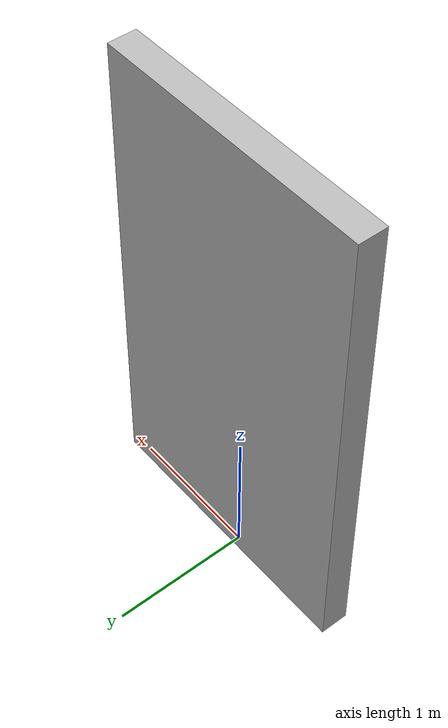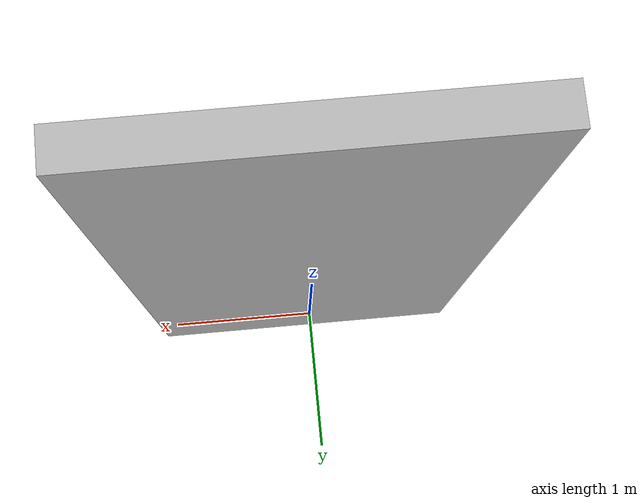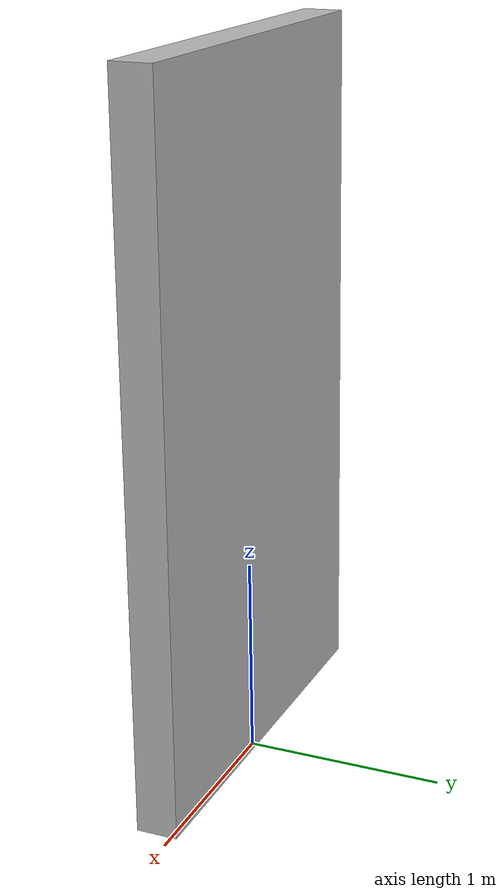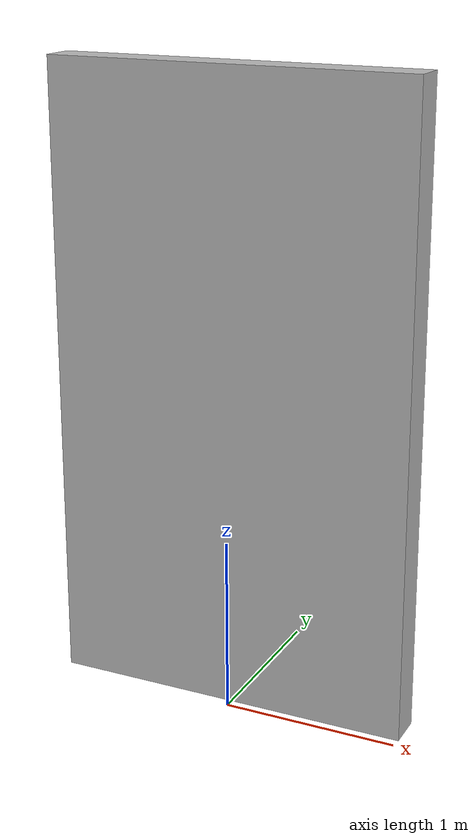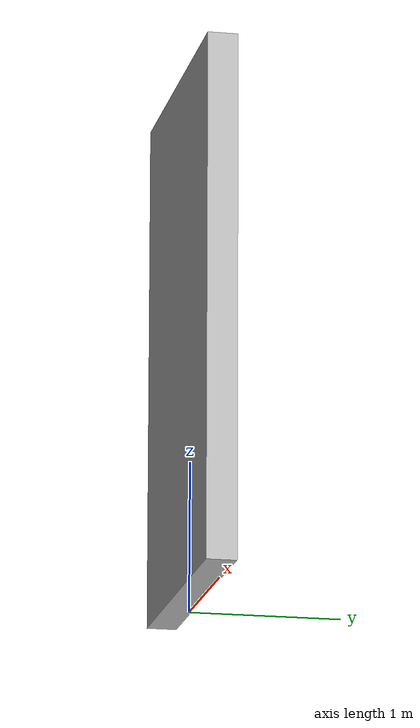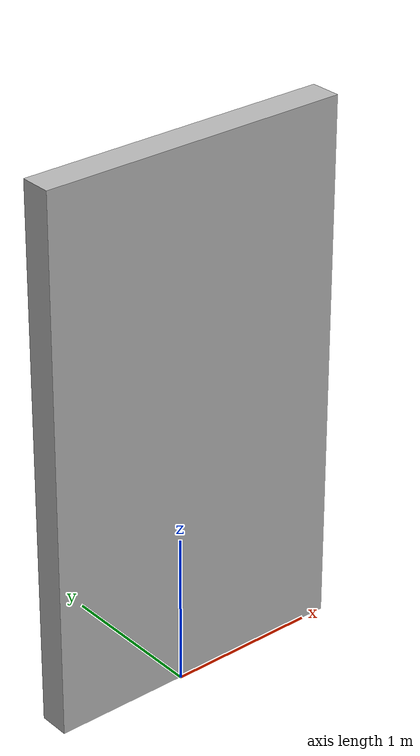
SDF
<?xml version="1.0"?>
<sdf version="1.5">
    <model name="house1_small">
        <static>true</static>
        <link name="link">
            <collision name="collision1">
                <pose>0 0 0 0 0 0</pose>
                <geometry>
                    <mesh>
                        <uri>model://house_scene_1_wall_small/meshes/scene_1_wall_small.dae</uri>
                    </mesh>
                </geometry>
            </collision>
            <visual name="visual_walls1">
              <pose>0 0 0 0 0 0</pose>
              <geometry>
              <mesh>
                 <uri>model://house_scene_1_wall_small/meshes/scene_1_wall_small.dae</uri>
              </mesh>
              </geometry>
              <material>
                  <script>
                      <uri>model://house_scene_1_wall_small/materials/scripts</uri>
                      <uri>model://house_scene_1_wall_small/materials/textures</uri>
                      <name>houseMat/Diffuse</name>
                  </script>
              </material>
             </visual>

        </link>
    </model>
</sdf>
